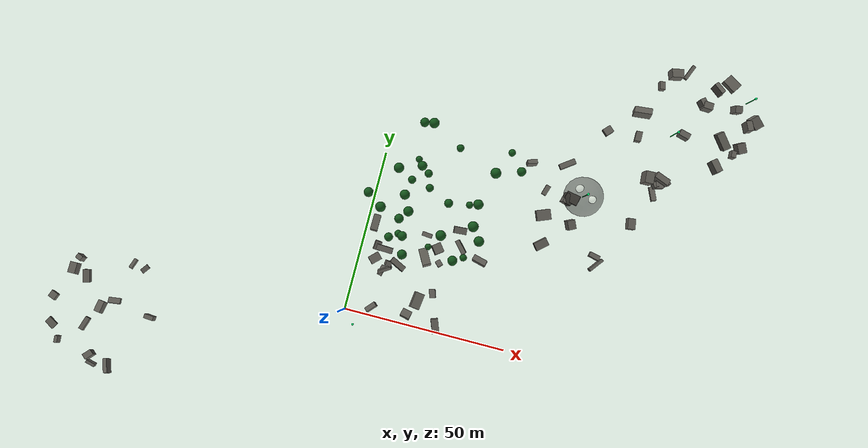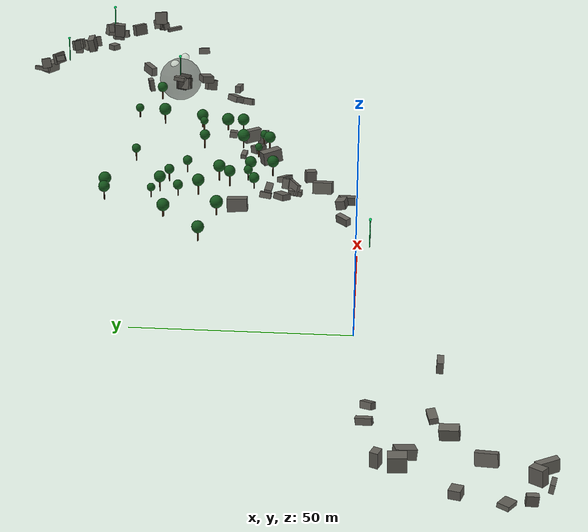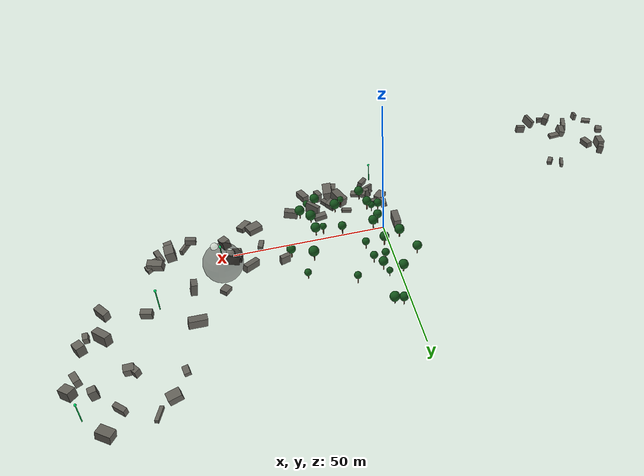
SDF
<sdf version="1.10">
 <world name="hiking_lora_world">
  <model name="node_ridge_mid">
   <static>true</static>
   <pose>4 -3 0 0 0 0</pose>
   <link name="tower">
    <visual name="mast">
     <pose>0 0 22.4037 0 0 0</pose>
     <geometry><cylinder><radius>0.12</radius><length>6</length></cylinder></geometry>
     <material><ambient>0.0 0.6624 0.2592 1</ambient><diffuse>0.0 0.92 0.36 1</diffuse></material>
    </visual>
    <visual name="antenna">
     <pose>0 0 25.7537 0 0 0</pose>
     <geometry><sphere><radius>0.31</radius></sphere></geometry>
     <material><ambient>0.0 0.72 0.34559999999999996 1</ambient><diffuse>0.0 1.0 0.48 1</diffuse></material>
    </visual>
   </link>
  </model>
  <model name="node_crater_edge">
   <static>true</static>
   <pose>54 45 0 0 0 0</pose>
   <link name="tower">
    <visual name="mast">
     <pose>0 0 46.4676 0 0 0</pose>
     <geometry><cylinder><radius>0.12</radius><length>6</length></cylinder></geometry>
     <material><ambient>0.0 0.6624 0.2592 1</ambient><diffuse>0.0 0.92 0.36 1</diffuse></material>
    </visual>
    <visual name="antenna">
     <pose>0 0 49.8176 0 0 0</pose>
     <geometry><sphere><radius>0.31</radius></sphere></geometry>
     <material><ambient>0.0 0.72 0.34559999999999996 1</ambient><diffuse>0.0 1.0 0.48 1</diffuse></material>
    </visual>
   </link>
  </model>
  <model name="node_north_saddle">
   <static>true</static>
   <pose>70 64 0 0 0 0</pose>
   <link name="tower">
    <visual name="mast">
     <pose>0 0 55.4339 0 0 0</pose>
     <geometry><cylinder><radius>0.12</radius><length>6</length></cylinder></geometry>
     <material><ambient>0.0 0.6624 0.2592 1</ambient><diffuse>0.0 0.92 0.36 1</diffuse></material>
    </visual>
    <visual name="antenna">
     <pose>0 0 58.7839 0 0 0</pose>
     <geometry><sphere><radius>0.31</radius></sphere></geometry>
     <material><ambient>0.0 0.72 0.34559999999999996 1</ambient><diffuse>0.0 1.0 0.48 1</diffuse></material>
    </visual>
   </link>
  </model>
  <model name="node_summit_view">
   <static>true</static>
   <pose>91 81 0 0 0 0</pose>
   <link name="tower">
    <visual name="mast">
     <pose>0 0 42.7321 0 0 0</pose>
     <geometry><cylinder><radius>0.12</radius><length>6</length></cylinder></geometry>
     <material><ambient>0.0 0.6624 0.2592 1</ambient><diffuse>0.0 0.92 0.36 1</diffuse></material>
    </visual>
    <visual name="antenna">
     <pose>0 0 46.0821 0 0 0</pose>
     <geometry><sphere><radius>0.31</radius></sphere></geometry>
     <material><ambient>0.0 0.72 0.34559999999999996 1</ambient><diffuse>0.0 1.0 0.48 1</diffuse></material>
    </visual>
   </link>
  </model>
  <model name="north_forest_trees">
   <static>true</static>
   <link name="trees">
    <visual name="trunk_0">
     <pose>11.5891 44.0858 29.7794 0 0 0</pose>
     <geometry><cylinder><radius>0.1541</radius><length>2.7017</length></cylinder></geometry>
     <material><ambient>0.2016 0.12240000000000001 0.0576 1</ambient><diffuse>0.28 0.17 0.08 1</diffuse></material>
    </visual>
    <visual name="canopy_0">
     <pose>11.5891 44.0858 31.8503 0 0 0</pose>
     <geometry><sphere><radius>1.3092</radius></sphere></geometry>
     <material>
      <ambient>0.0576 0.24480000000000002 0.07919999999999999 1</ambient>
      <diffuse>0.08 0.34 0.11 1</diffuse>
     </material>
    </visual>
    <visual name="trunk_1">
     <pose>20.8888 26.1444 37.3318 0 0 0</pose>
     <geometry><cylinder><radius>0.1187</radius><length>2.2871</length></cylinder></geometry>
     <material><ambient>0.2016 0.12240000000000001 0.0576 1</ambient><diffuse>0.28 0.17 0.08 1</diffuse></material>
    </visual>
    <visual name="canopy_1">
     <pose>20.8888 26.1444 39.242 0 0 0</pose>
     <geometry><sphere><radius>1.3939</radius></sphere></geometry>
     <material>
      <ambient>0.0576 0.24480000000000002 0.07919999999999999 1</ambient>
      <diffuse>0.08 0.34 0.11 1</diffuse>
     </material>
    </visual>
    <visual name="trunk_2">
     <pose>10.9891 30.6313 32.8303 0 0 0</pose>
     <geometry><cylinder><radius>0.1615</radius><length>2.6215</length></cylinder></geometry>
     <material><ambient>0.2016 0.12240000000000001 0.0576 1</ambient><diffuse>0.28 0.17 0.08 1</diffuse></material>
    </visual>
    <visual name="canopy_2">
     <pose>10.9891 30.6313 34.8855 0 0 0</pose>
     <geometry><sphere><radius>1.3536</radius></sphere></geometry>
     <material>
      <ambient>0.0576 0.24480000000000002 0.07919999999999999 1</ambient>
      <diffuse>0.08 0.34 0.11 1</diffuse>
     </material>
    </visual>
    <visual name="trunk_3">
     <pose>15.0314 38.2635 33.0691 0 0 0</pose>
     <geometry><cylinder><radius>0.142</radius><length>2.2435</length></cylinder></geometry>
     <material><ambient>0.2016 0.12240000000000001 0.0576 1</ambient><diffuse>0.28 0.17 0.08 1</diffuse></material>
    </visual>
    <visual name="canopy_3">
     <pose>15.0314 38.2635 34.7768 0 0 0</pose>
     <geometry><sphere><radius>1.0655</radius></sphere></geometry>
     <material>
      <ambient>0.0576 0.24480000000000002 0.07919999999999999 1</ambient>
      <diffuse>0.08 0.34 0.11 1</diffuse>
     </material>
    </visual>
    <visual name="trunk_4">
     <pose>36.6394 46.899 44.4152 0 0 0</pose>
     <geometry><cylinder><radius>0.1774</radius><length>2.2742</length></cylinder></geometry>
     <material><ambient>0.2016 0.12240000000000001 0.0576 1</ambient><diffuse>0.28 0.17 0.08 1</diffuse></material>
    </visual>
    <visual name="canopy_4">
     <pose>36.6394 46.899 46.2051 0 0 0</pose>
     <geometry><sphere><radius>1.187</radius></sphere></geometry>
     <material>
      <ambient>0.0576 0.24480000000000002 0.07919999999999999 1</ambient>
      <diffuse>0.08 0.34 0.11 1</diffuse>
     </material>
    </visual>
    <visual name="trunk_5">
     <pose>30.9716 27.1115 38.3306 0 0 0</pose>
     <geometry><cylinder><radius>0.1398</radius><length>2.2984</length></cylinder></geometry>
     <material><ambient>0.2016 0.12240000000000001 0.0576 1</ambient><diffuse>0.28 0.17 0.08 1</diffuse></material>
    </visual>
    <visual name="canopy_5">
     <pose>30.9716 27.1115 40.2268 0 0 0</pose>
     <geometry><sphere><radius>1.3582</radius></sphere></geometry>
     <material>
      <ambient>0.0576 0.24480000000000002 0.07919999999999999 1</ambient>
      <diffuse>0.08 0.34 0.11 1</diffuse>
     </material>
    </visual>
    <visual name="trunk_6">
     <pose>20.7825 34.9889 37.2763 0 0 0</pose>
     <geometry><cylinder><radius>0.1598</radius><length>2.5757</length></cylinder></geometry>
     <material><ambient>0.2016 0.12240000000000001 0.0576 1</ambient><diffuse>0.28 0.17 0.08 1</diffuse></material>
    </visual>
    <visual name="canopy_6">
     <pose>20.7825 34.9889 39.2058 0 0 0</pose>
     <geometry><sphere><radius>1.1666</radius></sphere></geometry>
     <material>
      <ambient>0.0576 0.24480000000000002 0.07919999999999999 1</ambient>
      <diffuse>0.08 0.34 0.11 1</diffuse>
     </material>
    </visual>
    <visual name="trunk_7">
     <pose>28.2971 36.3792 39.9759 0 0 0</pose>
     <geometry><cylinder><radius>0.1697</radius><length>2.1481</length></cylinder></geometry>
     <material><ambient>0.2016 0.12240000000000001 0.0576 1</ambient><diffuse>0.28 0.17 0.08 1</diffuse></material>
    </visual>
    <visual name="canopy_7">
     <pose>28.2971 36.3792 41.7813 0 0 0</pose>
     <geometry><sphere><radius>1.3298</radius></sphere></geometry>
     <material>
      <ambient>0.0576 0.24480000000000002 0.07919999999999999 1</ambient>
      <diffuse>0.08 0.34 0.11 1</diffuse>
     </material>
    </visual>
    <visual name="trunk_8">
     <pose>-1.1687 34.0595 22.7393 0 0 0</pose>
     <geometry><cylinder><radius>0.162</radius><length>2.445</length></cylinder></geometry>
     <material><ambient>0.2016 0.12240000000000001 0.0576 1</ambient><diffuse>0.28 0.17 0.08 1</diffuse></material>
    </visual>
    <visual name="canopy_8">
     <pose>-1.1687 34.0595 24.7162 0 0 0</pose>
     <geometry><sphere><radius>1.3715</radius></sphere></geometry>
     <material>
      <ambient>0.0576 0.24480000000000002 0.07919999999999999 1</ambient>
      <diffuse>0.08 0.34 0.11 1</diffuse>
     </material>
    </visual>
    <visual name="trunk_9">
     <pose>10.3044 45.921 28.2916 0 0 0</pose>
     <geometry><cylinder><radius>0.1134</radius><length>1.7903</length></cylinder></geometry>
     <material><ambient>0.2016 0.12240000000000001 0.0576 1</ambient><diffuse>0.28 0.17 0.08 1</diffuse></material>
    </visual>
    <visual name="canopy_9">
     <pose>10.3044 45.921 29.6949 0 0 0</pose>
     <geometry><sphere><radius>0.924</radius></sphere></geometry>
     <material>
      <ambient>0.0576 0.24480000000000002 0.07919999999999999 1</ambient>
      <diffuse>0.08 0.34 0.11 1</diffuse>
     </material>
    </visual>
    <visual name="trunk_10">
     <pose>26.156 35.7413 39.3455 0 0 0</pose>
     <geometry><cylinder><radius>0.1873</radius><length>2.3631</length></cylinder></geometry>
     <material><ambient>0.2016 0.12240000000000001 0.0576 1</ambient><diffuse>0.28 0.17 0.08 1</diffuse></material>
    </visual>
    <visual name="canopy_10">
     <pose>26.156 35.7413 41.0388 0 0 0</pose>
     <geometry><sphere><radius>0.9305</radius></sphere></geometry>
     <material>
      <ambient>0.0576 0.24480000000000002 0.07919999999999999 1</ambient>
      <diffuse>0.08 0.34 0.11 1</diffuse>
     </material>
    </visual>
    <visual name="trunk_11">
     <pose>8.9383 35.1084 30.0657 0 0 0</pose>
     <geometry><cylinder><radius>0.1882</radius><length>2.6093</length></cylinder></geometry>
     <material><ambient>0.2016 0.12240000000000001 0.0576 1</ambient><diffuse>0.28 0.17 0.08 1</diffuse></material>
    </visual>
    <visual name="canopy_11">
     <pose>8.9383 35.1084 32.1217 0 0 0</pose>
     <geometry><sphere><radius>1.3661</radius></sphere></geometry>
     <material>
      <ambient>0.0576 0.24480000000000002 0.07919999999999999 1</ambient>
      <diffuse>0.08 0.34 0.11 1</diffuse>
     </material>
    </visual>
    <visual name="trunk_12">
     <pose>20.3251 50.7633 33.9363 0 0 0</pose>
     <geometry><cylinder><radius>0.1555</radius><length>2.4269</length></cylinder></geometry>
     <material><ambient>0.2016 0.12240000000000001 0.0576 1</ambient><diffuse>0.28 0.17 0.08 1</diffuse></material>
    </visual>
    <visual name="canopy_12">
     <pose>20.3251 50.7633 35.7104 0 0 0</pose>
     <geometry><sphere><radius>1.0195</radius></sphere></geometry>
     <material>
      <ambient>0.0576 0.24480000000000002 0.07919999999999999 1</ambient>
      <diffuse>0.08 0.34 0.11 1</diffuse>
     </material>
    </visual>
    <visual name="trunk_13">
     <pose>12.2329 18.8206 33.8243 0 0 0</pose>
     <geometry><cylinder><radius>0.1328</radius><length>2.6064</length></cylinder></geometry>
     <material><ambient>0.2016 0.12240000000000001 0.0576 1</ambient><diffuse>0.28 0.17 0.08 1</diffuse></material>
    </visual>
    <visual name="canopy_13">
     <pose>12.2329 18.8206 35.8428 0 0 0</pose>
     <geometry><sphere><radius>1.3005</radius></sphere></geometry>
     <material>
      <ambient>0.0576 0.24480000000000002 0.07919999999999999 1</ambient>
      <diffuse>0.08 0.34 0.11 1</diffuse>
     </material>
    </visual>
    <visual name="trunk_14">
     <pose>18.5043 22.5207 35.852 0 0 0</pose>
     <geometry><cylinder><radius>0.1598</radius><length>1.8864</length></cylinder></geometry>
     <material><ambient>0.2016 0.12240000000000001 0.0576 1</ambient><diffuse>0.28 0.17 0.08 1</diffuse></material>
    </visual>
    <visual name="canopy_14">
     <pose>18.5043 22.5207 37.2695 0 0 0</pose>
     <geometry><sphere><radius>0.8624</radius></sphere></geometry>
     <material>
      <ambient>0.0576 0.24480000000000002 0.07919999999999999 1</ambient>
      <diffuse>0.08 0.34 0.11 1</diffuse>
     </material>
    </visual>
    <visual name="trunk_15">
     <pose>13.7675 42.2524 31.2696 0 0 0</pose>
     <geometry><cylinder><radius>0.136</radius><length>2.2391</length></cylinder></geometry>
     <material><ambient>0.2016 0.12240000000000001 0.0576 1</ambient><diffuse>0.28 0.17 0.08 1</diffuse></material>
    </visual>
    <visual name="canopy_15">
     <pose>13.7675 42.2524 32.9936 0 0 0</pose>
     <geometry><sphere><radius>1.0989</radius></sphere></geometry>
     <material>
      <ambient>0.0576 0.24480000000000002 0.07919999999999999 1</ambient>
      <diffuse>0.08 0.34 0.11 1</diffuse>
     </material>
    </visual>
    <visual name="trunk_16">
     <pose>3.2302 30.4708 27.1267 0 0 0</pose>
     <geometry><cylinder><radius>0.1824</radius><length>2.2828</length></cylinder></geometry>
     <material><ambient>0.2016 0.12240000000000001 0.0576 1</ambient><diffuse>0.28 0.17 0.08 1</diffuse></material>
    </visual>
    <visual name="canopy_16">
     <pose>3.2302 30.4708 29.0613 0 0 0</pose>
     <geometry><sphere><radius>1.4424</radius></sphere></geometry>
     <material>
      <ambient>0.0576 0.24480000000000002 0.07919999999999999 1</ambient>
      <diffuse>0.08 0.34 0.11 1</diffuse>
     </material>
    </visual>
    <visual name="trunk_17">
     <pose>11.813 56.5899 29.2599 0 0 0</pose>
     <geometry><cylinder><radius>0.1146</radius><length>2.0467</length></cylinder></geometry>
     <material><ambient>0.2016 0.12240000000000001 0.0576 1</ambient><diffuse>0.28 0.17 0.08 1</diffuse></material>
    </visual>
    <visual name="canopy_17">
     <pose>11.813 56.5899 31.06 0 0 0</pose>
     <geometry><sphere><radius>1.4122</radius></sphere></geometry>
     <material>
      <ambient>0.0576 0.24480000000000002 0.07919999999999999 1</ambient>
      <diffuse>0.08 0.34 0.11 1</diffuse>
     </material>
    </visual>
    <visual name="trunk_18">
     <pose>9.1951 56.3262 28.0234 0 0 0</pose>
     <geometry><cylinder><radius>0.1264</radius><length>2.4276</length></cylinder></geometry>
     <material><ambient>0.2016 0.12240000000000001 0.0576 1</ambient><diffuse>0.28 0.17 0.08 1</diffuse></material>
    </visual>
    <visual name="canopy_18">
     <pose>9.1951 56.3262 29.9378 0 0 0</pose>
     <geometry><sphere><radius>1.2739</radius></sphere></geometry>
     <material>
      <ambient>0.0576 0.24480000000000002 0.07919999999999999 1</ambient>
      <diffuse>0.08 0.34 0.11 1</diffuse>
     </material>
    </visual>
    <visual name="trunk_19">
     <pose>33.5551 51.9173 40.3948 0 0 0</pose>
     <geometry><cylinder><radius>0.1445</radius><length>1.7725</length></cylinder></geometry>
     <material><ambient>0.2016 0.12240000000000001 0.0576 1</ambient><diffuse>0.28 0.17 0.08 1</diffuse></material>
    </visual>
    <visual name="canopy_19">
     <pose>33.5551 51.9173 41.8065 0 0 0</pose>
     <geometry><sphere><radius>0.9552</radius></sphere></geometry>
     <material>
      <ambient>0.0576 0.24480000000000002 0.07919999999999999 1</ambient>
      <diffuse>0.08 0.34 0.11 1</diffuse>
     </material>
    </visual>
    <visual name="trunk_20">
     <pose>25.6384 20.556 35.4842 0 0 0</pose>
     <geometry><cylinder><radius>0.145</radius><length>2.7983</length></cylinder></geometry>
     <material><ambient>0.2016 0.12240000000000001 0.0576 1</ambient><diffuse>0.28 0.17 0.08 1</diffuse></material>
    </visual>
    <visual name="canopy_20">
     <pose>25.6384 20.556 37.608 0 0 0</pose>
     <geometry><sphere><radius>1.3176</radius></sphere></geometry>
     <material>
      <ambient>0.0576 0.24480000000000002 0.07919999999999999 1</ambient>
      <diffuse>0.08 0.34 0.11 1</diffuse>
     </material>
    </visual>
    <visual name="trunk_21">
     <pose>28.512 30.4617 39.2066 0 0 0</pose>
     <geometry><cylinder><radius>0.1805</radius><length>1.7566</length></cylinder></geometry>
     <material><ambient>0.2016 0.12240000000000001 0.0576 1</ambient><diffuse>0.28 0.17 0.08 1</diffuse></material>
    </visual>
    <visual name="canopy_21">
     <pose>28.512 30.4617 40.869 0 0 0</pose>
     <geometry><sphere><radius>1.4256</radius></sphere></geometry>
     <material>
      <ambient>0.0576 0.24480000000000002 0.07919999999999999 1</ambient>
      <diffuse>0.08 0.34 0.11 1</diffuse>
     </material>
    </visual>
    <visual name="trunk_22">
     <pose>9.8558 24.1159 33.0264 0 0 0</pose>
     <geometry><cylinder><radius>0.1154</radius><length>1.9242</length></cylinder></geometry>
     <material><ambient>0.2016 0.12240000000000001 0.0576 1</ambient><diffuse>0.28 0.17 0.08 1</diffuse></material>
    </visual>
    <visual name="canopy_22">
     <pose>9.8558 24.1159 34.5283 0 0 0</pose>
     <geometry><sphere><radius>0.9816</radius></sphere></geometry>
     <material>
      <ambient>0.0576 0.24480000000000002 0.07919999999999999 1</ambient>
      <diffuse>0.08 0.34 0.11 1</diffuse>
     </material>
    </visual>
    <visual name="trunk_23">
     <pose>30.651 45.4755 40.2575 0 0 0</pose>
     <geometry><cylinder><radius>0.1511</radius><length>2.6859</length></cylinder></geometry>
     <material><ambient>0.2016 0.12240000000000001 0.0576 1</ambient><diffuse>0.28 0.17 0.08 1</diffuse></material>
    </visual>
    <visual name="canopy_23">
     <pose>30.651 45.4755 42.3756 0 0 0</pose>
     <geometry><sphere><radius>1.4094</radius></sphere></geometry>
     <material>
      <ambient>0.0576 0.24480000000000002 0.07919999999999999 1</ambient>
      <diffuse>0.08 0.34 0.11 1</diffuse>
     </material>
    </visual>
    <visual name="trunk_24">
     <pose>11.0435 23.6557 33.9623 0 0 0</pose>
     <geometry><cylinder><radius>0.1888</radius><length>2.5538</length></cylinder></geometry>
     <material><ambient>0.2016 0.12240000000000001 0.0576 1</ambient><diffuse>0.28 0.17 0.08 1</diffuse></material>
    </visual>
    <visual name="canopy_24">
     <pose>11.0435 23.6557 35.9398 0 0 0</pose>
     <geometry><sphere><radius>1.2738</radius></sphere></geometry>
     <material>
      <ambient>0.0576 0.24480000000000002 0.07919999999999999 1</ambient>
      <diffuse>0.08 0.34 0.11 1</diffuse>
     </material>
    </visual>
    <visual name="trunk_25">
     <pose>28.2422 22.0596 35.8155 0 0 0</pose>
     <geometry><cylinder><radius>0.1477</radius><length>2.3494</length></cylinder></geometry>
     <material><ambient>0.2016 0.12240000000000001 0.0576 1</ambient><diffuse>0.28 0.17 0.08 1</diffuse></material>
    </visual>
    <visual name="canopy_25">
     <pose>28.2422 22.0596 37.5134 0 0 0</pose>
     <geometry><sphere><radius>0.9512</radius></sphere></geometry>
     <material>
      <ambient>0.0576 0.24480000000000002 0.07919999999999999 1</ambient>
      <diffuse>0.08 0.34 0.11 1</diffuse>
     </material>
    </visual>
    <visual name="trunk_26">
     <pose>9.8215 39.7915 29.0538 0 0 0</pose>
     <geometry><cylinder><radius>0.1241</radius><length>1.9218</length></cylinder></geometry>
     <material><ambient>0.2016 0.12240000000000001 0.0576 1</ambient><diffuse>0.28 0.17 0.08 1</diffuse></material>
    </visual>
    <visual name="canopy_26">
     <pose>9.8215 39.7915 30.618 0 0 0</pose>
     <geometry><sphere><radius>1.0968</radius></sphere></geometry>
     <material>
      <ambient>0.0576 0.24480000000000002 0.07919999999999999 1</ambient>
      <diffuse>0.08 0.34 0.11 1</diffuse>
     </material>
    </visual>
    <visual name="trunk_27">
     <pose>9.0442 28.1367 32.2958 0 0 0</pose>
     <geometry><cylinder><radius>0.1513</radius><length>2.7867</length></cylinder></geometry>
     <material><ambient>0.2016 0.12240000000000001 0.0576 1</ambient><diffuse>0.28 0.17 0.08 1</diffuse></material>
    </visual>
    <visual name="canopy_27">
     <pose>9.0442 28.1367 34.3824 0 0 0</pose>
     <geometry><sphere><radius>1.2605</radius></sphere></geometry>
     <material>
      <ambient>0.0576 0.24480000000000002 0.07919999999999999 1</ambient>
      <diffuse>0.08 0.34 0.11 1</diffuse>
     </material>
    </visual>
    <visual name="trunk_28">
     <pose>5.4025 42.5549 25.5423 0 0 0</pose>
     <geometry><cylinder><radius>0.1831</radius><length>1.9204</length></cylinder></geometry>
     <material><ambient>0.2016 0.12240000000000001 0.0576 1</ambient><diffuse>0.28 0.17 0.08 1</diffuse></material>
    </visual>
    <visual name="canopy_28">
     <pose>5.4025 42.5549 27.2877 0 0 0</pose>
     <geometry><sphere><radius>1.4277</radius></sphere></geometry>
     <material>
      <ambient>0.0576 0.24480000000000002 0.07919999999999999 1</ambient>
      <diffuse>0.08 0.34 0.11 1</diffuse>
     </material>
    </visual>
    <visual name="trunk_29">
     <pose>7.5814 22.6438 31.86 0 0 0</pose>
     <geometry><cylinder><radius>0.1234</radius><length>1.8585</length></cylinder></geometry>
     <material><ambient>0.2016 0.12240000000000001 0.0576 1</ambient><diffuse>0.28 0.17 0.08 1</diffuse></material>
    </visual>
    <visual name="canopy_29">
     <pose>7.5814 22.6438 33.4355 0 0 0</pose>
     <geometry><sphere><radius>1.1749</radius></sphere></geometry>
     <material>
      <ambient>0.0576 0.24480000000000002 0.07919999999999999 1</ambient>
      <diffuse>0.08 0.34 0.11 1</diffuse>
     </material>
    </visual>
   </link>
  </model>
  <model name="lower_cliff">
   <static>true</static>
   <link name="rocks">
    <visual name="rock_0">
     <pose>25.6139 28.8652 38.1798 0.1288 0.1108 0.0783</pose>
     <geometry><box><size>3.3685 1.7582 1.3184</size></box></geometry>
     <material><ambient>0.2808 0.2736 0.252 1</ambient><diffuse>0.39 0.38 0.35 1</diffuse></material>
    </visual>
    <visual name="rock_1">
     <pose>9.259 15.7207 31.7826 -0.1895 0.1058 -1.6823</pose>
     <geometry><box><size>1.4099 1.5421 2.2049</size></box></geometry>
     <material><ambient>0.2808 0.2736 0.252 1</ambient><diffuse>0.39 0.38 0.35 1</diffuse></material>
    </visual>
    <visual name="rock_2">
     <pose>18.4019 19.6817 35.2711 0.051 -0.1677 -1.0749</pose>
     <geometry><box><size>4.4924 2.2774 2.9001</size></box></geometry>
     <material><ambient>0.2808 0.2736 0.252 1</ambient><diffuse>0.39 0.38 0.35 1</diffuse></material>
    </visual>
    <visual name="rock_3">
     <pose>11.8752 16.0942 32.0683 0.1397 -0.135 2.6889</pose>
     <geometry><box><size>4.3511 1.5369 1.1716</size></box></geometry>
     <material><ambient>0.2808 0.2736 0.252 1</ambient><diffuse>0.39 0.38 0.35 1</diffuse></material>
    </visual>
    <visual name="rock_4">
     <pose>5.2024 19.8819 30.315 -0.2037 0.1317 -1.6659</pose>
     <geometry><box><size>2.4631 1.7694 1.2486</size></box></geometry>
     <material><ambient>0.2808 0.2736 0.252 1</ambient><diffuse>0.39 0.38 0.35 1</diffuse></material>
    </visual>
    <visual name="rock_5">
     <pose>19.5535 7.9278 27.7915 0.1156 0.0291 1.4436</pose>
     <geometry><box><size>4.4032 2.5879 2.6115</size></box></geometry>
     <material><ambient>0.2808 0.2736 0.252 1</ambient><diffuse>0.39 0.38 0.35 1</diffuse></material>
    </visual>
    <visual name="rock_6">
     <pose>26.9224 24.644 37.6019 0.1705 -0.0325 -0.8468</pose>
     <geometry><box><size>3.9638 1.2022 3.0156</size></box></geometry>
     <material><ambient>0.2808 0.2736 0.252 1</ambient><diffuse>0.39 0.38 0.35 1</diffuse></material>
    </visual>
    <visual name="rock_7">
     <pose>7.3389 19.3664 31.2046 -0.179 0.0785 3.0965</pose>
     <geometry><box><size>4.484 1.5732 0.8644</size></box></geometry>
     <material><ambient>0.2808 0.2736 0.252 1</ambient><diffuse>0.39 0.38 0.35 1</diffuse></material>
    </visual>
    <visual name="rock_8">
     <pose>5.3842 16.3163 30.1232 0.0479 0.0203 0.7705</pose>
     <geometry><box><size>3.1063 2.2964 1.3329</size></box></geometry>
     <material><ambient>0.2808 0.2736 0.252 1</ambient><diffuse>0.39 0.38 0.35 1</diffuse></material>
    </visual>
    <visual name="rock_9">
     <pose>21.1322 22.7305 36.0601 0.0428 -0.0696 -2.4927</pose>
     <geometry><box><size>2.4794 2.6541 1.6319</size></box></geometry>
     <material><ambient>0.2808 0.2736 0.252 1</ambient><diffuse>0.39 0.38 0.35 1</diffuse></material>
    </visual>
    <visual name="rock_10">
     <pose>32.8753 22.5087 35.3253 0.0774 0.1435 2.8795</pose>
     <geometry><box><size>3.8088 1.5498 2.44</size></box></geometry>
     <material><ambient>0.2808 0.2736 0.252 1</ambient><diffuse>0.39 0.38 0.35 1</diffuse></material>
    </visual>
    <visual name="rock_11">
     <pose>3.0677 25.874 28.7243 -0.004 -0.0448 -1.5883</pose>
     <geometry><box><size>4.3804 1.981 2.9196</size></box></geometry>
     <material><ambient>0.2808 0.2736 0.252 1</ambient><diffuse>0.39 0.38 0.35 1</diffuse></material>
    </visual>
    <visual name="rock_12">
     <pose>23.1643 10.9095 29.3161 -0.0074 0.1213 -2.8138</pose>
     <geometry><box><size>1.6149 2.4106 2.6574</size></box></geometry>
     <material><ambient>0.2808 0.2736 0.252 1</ambient><diffuse>0.39 0.38 0.35 1</diffuse></material>
    </visual>
    <visual name="rock_13">
     <pose>17.5145 25.679 35.7428 -0.0712 0.1437 3.0376</pose>
     <geometry><box><size>2.7006 1.1413 0.9667</size></box></geometry>
     <material><ambient>0.2808 0.2736 0.252 1</ambient><diffuse>0.39 0.38 0.35 1</diffuse></material>
    </visual>
    <visual name="rock_14">
     <pose>17.675 3.5468 24.7327 0.1006 -0.1698 -1.809</pose>
     <geometry><box><size>2.1819 2.7178 2.0615</size></box></geometry>
     <material><ambient>0.2808 0.2736 0.252 1</ambient><diffuse>0.39 0.38 0.35 1</diffuse></material>
    </visual>
    <visual name="rock_15">
     <pose>26.4525 2.3543 22.602 0.0357 0.1258 -1.2065</pose>
     <geometry><box><size>4.1325 2.0027 1.8226</size></box></geometry>
     <material><ambient>0.2808 0.2736 0.252 1</ambient><diffuse>0.39 0.38 0.35 1</diffuse></material>
    </visual>
    <visual name="rock_16">
     <pose>8.7631 13.9758 31.1006 0.1997 -0.1715 0.5886</pose>
     <geometry><box><size>3.7816 0.8205 2.4447</size></box></geometry>
     <material><ambient>0.2808 0.2736 0.252 1</ambient><diffuse>0.39 0.38 0.35 1</diffuse></material>
    </visual>
    <visual name="rock_17">
     <pose>7.7248 2.9476 24.2341 0.2018 0.146 -2.3026</pose>
     <geometry><box><size>3.2115 1.3144 1.7735</size></box></geometry>
     <material><ambient>0.2808 0.2736 0.252 1</ambient><diffuse>0.39 0.38 0.35 1</diffuse></material>
    </visual>
    <visual name="rock_18">
     <pose>22.5661 19.0963 34.103 0.1616 0.0559 -2.3466</pose>
     <geometry><box><size>1.4785 1.6937 1.138</size></box></geometry>
     <material><ambient>0.2808 0.2736 0.252 1</ambient><diffuse>0.39 0.38 0.35 1</diffuse></material>
    </visual>
    <visual name="rock_19">
     <pose>8.0507 13.5347 30.1358 -0.1391 -0.044 1.3193</pose>
     <geometry><box><size>2.931 1.2392 1.1986</size></box></geometry>
     <material><ambient>0.2808 0.2736 0.252 1</ambient><diffuse>0.39 0.38 0.35 1</diffuse></material>
    </visual>
   </link>
  </model>
  <model name="crater_rocks">
   <static>true</static>
   <link name="rocks">
    <visual name="rock_0">
     <pose>51.3214 43.8038 44.0137 0.1279 -0.1772 -0.227</pose>
     <geometry><box><size>3.6037 2.5477 2.6582</size></box></geometry>
     <material><ambient>0.2808 0.2736 0.252 1</ambient><diffuse>0.39 0.38 0.35 1</diffuse></material>
    </visual>
    <visual name="rock_1">
     <pose>69.4971 51.111 54.3107 0.0866 -0.0671 -2.8783</pose>
     <geometry><box><size>1.9434 2.223 1.407</size></box></geometry>
     <material><ambient>0.2808 0.2736 0.252 1</ambient><diffuse>0.39 0.38 0.35 1</diffuse></material>
    </visual>
    <visual name="rock_2">
     <pose>47.3307 51.4367 47.9384 0.0217 0.1614 -2.5223</pose>
     <geometry><box><size>4.1923 1.3901 2.0075</size></box></geometry>
     <material><ambient>0.2808 0.2736 0.252 1</ambient><diffuse>0.39 0.38 0.35 1</diffuse></material>
    </visual>
    <visual name="rock_3">
     <pose>44.6749 37.3808 46.6154 0.0878 0.0093 0.3812</pose>
     <geometry><box><size>3.6772 2.7342 1.5444</size></box></geometry>
     <material><ambient>0.2808 0.2736 0.252 1</ambient><diffuse>0.39 0.38 0.35 1</diffuse></material>
    </visual>
    <visual name="rock_4">
     <pose>69.9618 51.3326 54.0395 0.217 -0.1413 -2.6634</pose>
     <geometry><box><size>4.4282 1.5105 1.5634</size></box></geometry>
     <material><ambient>0.2808 0.2736 0.252 1</ambient><diffuse>0.39 0.38 0.35 1</diffuse></material>
    </visual>
    <visual name="rock_5">
     <pose>69.5493 52.2222 54.911 -0.2113 0.0521 -0.3604</pose>
     <geometry><box><size>3.7557 1.6961 2.2913</size></box></geometry>
     <material><ambient>0.2808 0.2736 0.252 1</ambient><diffuse>0.39 0.38 0.35 1</diffuse></material>
    </visual>
    <visual name="rock_6">
     <pose>43.8349 43.7726 46.5656 -0.0291 -0.0911 1.2829</pose>
     <geometry><box><size>2.6447 1.251 0.9172</size></box></geometry>
     <material><ambient>0.2808 0.2736 0.252 1</ambient><diffuse>0.39 0.38 0.35 1</diffuse></material>
    </visual>
    <visual name="rock_7">
     <pose>61.2838 31.0353 40.1994 -0.0058 0.0475 2.9099</pose>
     <geometry><box><size>2.8136 1.2729 1.725</size></box></geometry>
     <material><ambient>0.2808 0.2736 0.252 1</ambient><diffuse>0.39 0.38 0.35 1</diffuse></material>
    </visual>
    <visual name="rock_8">
     <pose>65.7146 51.3736 57.0585 0.123 0.0457 1.6244</pose>
     <geometry><box><size>2.9248 2.2343 2.9372</size></box></geometry>
     <material><ambient>0.2808 0.2736 0.252 1</ambient><diffuse>0.39 0.38 0.35 1</diffuse></material>
    </visual>
    <visual name="rock_9">
     <pose>46.783 30.4822 41.2738 0.1833 -0.0411 0.7207</pose>
     <geometry><box><size>3.567 2.166 1.3887</size></box></geometry>
     <material><ambient>0.2808 0.2736 0.252 1</ambient><diffuse>0.39 0.38 0.35 1</diffuse></material>
    </visual>
    <visual name="rock_10">
     <pose>63.0058 29.2473 36.5064 -0.0828 -0.0392 -2.2279</pose>
     <geometry><box><size>4.4665 0.8128 1.5503</size></box></geometry>
     <material><ambient>0.2808 0.2736 0.252 1</ambient><diffuse>0.39 0.38 0.35 1</diffuse></material>
    </visual>
    <visual name="rock_11">
     <pose>50.2056 43.3334 43.9161 -0.0166 -0.141 2.8651</pose>
     <geometry><box><size>2.3381 2.687 2.5817</size></box></geometry>
     <material><ambient>0.2808 0.2736 0.252 1</ambient><diffuse>0.39 0.38 0.35 1</diffuse></material>
    </visual>
    <visual name="rock_12">
     <pose>52.6701 37.1733 43.1291 -0.1052 0.1624 -1.1177</pose>
     <geometry><box><size>2.4394 2.0832 2.4359</size></box></geometry>
     <material><ambient>0.2808 0.2736 0.252 1</ambient><diffuse>0.39 0.38 0.35 1</diffuse></material>
    </visual>
    <visual name="rock_13">
     <pose>54.5593 61.5441 51.7954 0.0431 -0.0801 -0.7603</pose>
     <geometry><box><size>1.8756 2.1623 1.2797</size></box></geometry>
     <material><ambient>0.2808 0.2736 0.252 1</ambient><diffuse>0.39 0.38 0.35 1</diffuse></material>
    </visual>
    <visual name="rock_14">
     <pose>66.4572 40.5246 48.5901 -0.1433 -0.0415 -1.43</pose>
     <geometry><box><size>2.7543 2.0342 1.4735</size></box></geometry>
     <material><ambient>0.2808 0.2736 0.252 1</ambient><diffuse>0.39 0.38 0.35 1</diffuse></material>
    </visual>
    <visual name="rock_15">
     <pose>61.6538 61.3408 54.5762 0.09 -0.1732 0.0076</pose>
     <geometry><box><size>1.5066 2.4209 3.0434</size></box></geometry>
     <material><ambient>0.2808 0.2736 0.252 1</ambient><diffuse>0.39 0.38 0.35 1</diffuse></material>
    </visual>
    <visual name="rock_16">
     <pose>68.6088 48.4276 53.7244 0.0195 -0.146 -1.2003</pose>
     <geometry><box><size>3.5713 1.2805 0.8182</size></box></geometry>
     <material><ambient>0.2808 0.2736 0.252 1</ambient><diffuse>0.39 0.38 0.35 1</diffuse></material>
    </visual>
    <visual name="rock_17">
     <pose>38.6793 49.8413 46.2173 0.1418 0.0106 -2.8327</pose>
     <geometry><box><size>2.5471 1.0699 2.7001</size></box></geometry>
     <material><ambient>0.2808 0.2736 0.252 1</ambient><diffuse>0.39 0.38 0.35 1</diffuse></material>
    </visual>
   </link>
  </model>
  <model name="summit_boulders">
   <static>true</static>
   <link name="rocks">
    <visual name="rock_0">
     <pose>82.1251 81.972 42.4354 0.1511 0.1531 2.41</pose>
     <geometry><box><size>3.1109 1.2502 2.7257</size></box></geometry>
     <material><ambient>0.2808 0.2736 0.252 1</ambient><diffuse>0.39 0.38 0.35 1</diffuse></material>
    </visual>
    <visual name="rock_1">
     <pose>90.8906 73.4318 45.2355 0.1141 -0.1122 -2.7668</pose>
     <geometry><box><size>1.6494 2.5994 2.5926</size></box></geometry>
     <material><ambient>0.2808 0.2736 0.252 1</ambient><diffuse>0.39 0.38 0.35 1</diffuse></material>
    </visual>
    <visual name="rock_2">
     <pose>83.2735 59.8561 50.3815 -0.0713 -0.0829 -0.9228</pose>
     <geometry><box><size>3.3229 1.7422 2.7203</size></box></geometry>
     <material><ambient>0.2808 0.2736 0.252 1</ambient><diffuse>0.39 0.38 0.35 1</diffuse></material>
    </visual>
    <visual name="rock_3">
     <pose>74.0021 84.855 41.3568 0.0052 0.0641 -1.9492</pose>
     <geometry><box><size>4.1595 0.942 0.9623</size></box></geometry>
     <material><ambient>0.2808 0.2736 0.252 1</ambient><diffuse>0.39 0.38 0.35 1</diffuse></material>
    </visual>
    <visual name="rock_4">
     <pose>77.4871 76.0889 47.0117 0.0674 -0.1231 -2.4875</pose>
     <geometry><box><size>1.5152 1.7901 2.4338</size></box></geometry>
     <material><ambient>0.2808 0.2736 0.252 1</ambient><diffuse>0.39 0.38 0.35 1</diffuse></material>
    </visual>
    <visual name="rock_5">
     <pose>89.3171 66.7495 47.6794 0.0108 -0.1518 2.0563</pose>
     <geometry><box><size>2.6661 2.1817 2.5468</size></box></geometry>
     <material><ambient>0.2808 0.2736 0.252 1</ambient><diffuse>0.39 0.38 0.35 1</diffuse></material>
    </visual>
    <visual name="rock_6">
     <pose>78.773 75.3317 47.1945 -0.1434 0.0755 -0.0389</pose>
     <geometry><box><size>2.492 1.8651 2.3077</size></box></geometry>
     <material><ambient>0.2808 0.2736 0.252 1</ambient><diffuse>0.39 0.38 0.35 1</diffuse></material>
    </visual>
    <visual name="rock_7">
     <pose>86.2349 85.3459 39.1471 -0.1244 0.1 2.5306</pose>
     <geometry><box><size>3.9009 2.6127 2.4307</size></box></geometry>
     <material><ambient>0.2808 0.2736 0.252 1</ambient><diffuse>0.39 0.38 0.35 1</diffuse></material>
    </visual>
    <visual name="rock_8">
     <pose>62.1491 68.6389 50.8428 0.1922 0.1058 -3.0709</pose>
     <geometry><box><size>4.4075 1.5803 3.0604</size></box></geometry>
     <material><ambient>0.2808 0.2736 0.252 1</ambient><diffuse>0.39 0.38 0.35 1</diffuse></material>
    </visual>
    <visual name="rock_9">
     <pose>70.0435 82.6781 43.7345 -0.149 0.1551 0.2276</pose>
     <geometry><box><size>3.2823 2.3114 2.3525</size></box></geometry>
     <material><ambient>0.2808 0.2736 0.252 1</ambient><diffuse>0.39 0.38 0.35 1</diffuse></material>
    </visual>
    <visual name="rock_10">
     <pose>83.6918 66.7677 50.0743 0.1056 0.1378 -0.8648</pose>
     <geometry><box><size>4.494 1.9097 2.6614</size></box></geometry>
     <material><ambient>0.2808 0.2736 0.252 1</ambient><diffuse>0.39 0.38 0.35 1</diffuse></material>
    </visual>
    <visual name="rock_11">
     <pose>87.3934 77.3828 44.1614 -0.0606 -0.1328 -2.972</pose>
     <geometry><box><size>1.9526 1.8797 2.7559</size></box></geometry>
     <material><ambient>0.2808 0.2736 0.252 1</ambient><diffuse>0.39 0.38 0.35 1</diffuse></material>
    </visual>
    <visual name="rock_12">
     <pose>66.5367 78.028 45.9185 -0.1729 0.154 0.1447</pose>
     <geometry><box><size>1.4815 2.1309 1.3061</size></box></geometry>
     <material><ambient>0.2808 0.2736 0.252 1</ambient><diffuse>0.39 0.38 0.35 1</diffuse></material>
    </visual>
    <visual name="rock_13">
     <pose>87.6333 64.5349 48.2303 0.062 0.0975 1.5795</pose>
     <geometry><box><size>1.7808 1.2801 1.8182</size></box></geometry>
     <material><ambient>0.2808 0.2736 0.252 1</ambient><diffuse>0.39 0.38 0.35 1</diffuse></material>
    </visual>
    <visual name="rock_14">
     <pose>73.0083 65.0584 52.9165 -0.1032 0.0136 -0.259</pose>
     <geometry><box><size>2.7334 1.5561 1.975</size></box></geometry>
     <material><ambient>0.2808 0.2736 0.252 1</ambient><diffuse>0.39 0.38 0.35 1</diffuse></material>
    </visual>
    <visual name="rock_15">
     <pose>93.0382 75.4162 43.6859 0.1016 0.1776 -0.7736</pose>
     <geometry><box><size>3.218 2.4055 2.5677</size></box></geometry>
     <material><ambient>0.2808 0.2736 0.252 1</ambient><diffuse>0.39 0.38 0.35 1</diffuse></material>
    </visual>
   </link>
  </model>
  <model name="western_scree">
   <static>true</static>
   <link name="rocks">
    <visual name="rock_0">
     <pose>-68.9125 -17.2793 13.2418 0.219 -0.1091 -1.7136</pose>
     <geometry><box><size>3.4595 1.963 2.1834</size></box></geometry>
     <material><ambient>0.2808 0.2736 0.252 1</ambient><diffuse>0.39 0.38 0.35 1</diffuse></material>
    </visual>
    <visual name="rock_1">
     <pose>-69.7034 -35.0401 4.4529 0.1436 -0.0001 -0.2419</pose>
     <geometry><box><size>2.8968 0.9099 1.689</size></box></geometry>
     <material><ambient>0.2808 0.2736 0.252 1</ambient><diffuse>0.39 0.38 0.35 1</diffuse></material>
    </visual>
    <visual name="rock_2">
     <pose>-79.5727 -8.3589 12.9567 0.1106 -0.045 -1.5683</pose>
     <geometry><box><size>3.2553 2.1861 2.8767</size></box></geometry>
     <material><ambient>0.2808 0.2736 0.252 1</ambient><diffuse>0.39 0.38 0.35 1</diffuse></material>
    </visual>
    <visual name="rock_3">
     <pose>-64.6325 -34.5802 5.2376 0.1719 -0.1522 -1.2065</pose>
     <geometry><box><size>4.2773 1.1976 2.8345</size></box></geometry>
     <material><ambient>0.2808 0.2736 0.252 1</ambient><diffuse>0.39 0.38 0.35 1</diffuse></material>
    </visual>
    <visual name="rock_4">
     <pose>-72.849 -23.4084 10.6298 -0.0898 -0.1014 -1.8412</pose>
     <geometry><box><size>3.9766 1.3297 2.4376</size></box></geometry>
     <material><ambient>0.2808 0.2736 0.252 1</ambient><diffuse>0.39 0.38 0.35 1</diffuse></material>
    </visual>
    <visual name="rock_5">
     <pose>-84.0422 -17.7547 10.4913 0.0657 -0.0475 -1.9273</pose>
     <geometry><box><size>2.0754 2.1728 1.6042</size></box></geometry>
     <material><ambient>0.2808 0.2736 0.252 1</ambient><diffuse>0.39 0.38 0.35 1</diffuse></material>
    </visual>
    <visual name="rock_6">
     <pose>-65.1125 -14.4631 14.1784 0.1674 0.0557 -3.0087</pose>
     <geometry><box><size>3.5587 1.6273 1.0958</size></box></geometry>
     <material><ambient>0.2808 0.2736 0.252 1</ambient><diffuse>0.39 0.38 0.35 1</diffuse></material>
    </visual>
    <visual name="rock_7">
     <pose>-70.3152 -32.4675 6.612 -0.0555 0.049 0.8528</pose>
     <geometry><box><size>2.7756 1.8013 3.1093</size></box></geometry>
     <material><ambient>0.2808 0.2736 0.252 1</ambient><diffuse>0.39 0.38 0.35 1</diffuse></material>
    </visual>
    <visual name="rock_8">
     <pose>-75.4333 -9.6461 12.5746 0.0061 -0.0995 1.8184</pose>
     <geometry><box><size>3.7404 2.0715 1.8966</size></box></geometry>
     <material><ambient>0.2808 0.2736 0.252 1</ambient><diffuse>0.39 0.38 0.35 1</diffuse></material>
    </visual>
    <visual name="rock_9">
     <pose>-52.8809 -16.1019 18.3492 0.0365 -0.1488 -0.0621</pose>
     <geometry><box><size>2.8103 1.2428 2.2083</size></box></geometry>
     <material><ambient>0.2808 0.2736 0.252 1</ambient><diffuse>0.39 0.38 0.35 1</diffuse></material>
    </visual>
    <visual name="rock_10">
     <pose>-59.3609 -3.3767 12.9731 -0.1988 -0.1128 -2.1886</pose>
     <geometry><box><size>2.4135 1.4567 1.3169</size></box></geometry>
     <material><ambient>0.2808 0.2736 0.252 1</ambient><diffuse>0.39 0.38 0.35 1</diffuse></material>
    </visual>
    <visual name="rock_11">
     <pose>-80.4309 -30.303 7.6915 -0.1691 -0.0341 1.6391</pose>
     <geometry><box><size>2.0851 1.0235 2.0827</size></box></geometry>
     <material><ambient>0.2808 0.2736 0.252 1</ambient><diffuse>0.39 0.38 0.35 1</diffuse></material>
    </visual>
    <visual name="rock_12">
     <pose>-63.3897 -2.7909 11.9036 0.0437 -0.1453 -1.8619</pose>
     <geometry><box><size>3.07 0.97 1.3821</size></box></geometry>
     <material><ambient>0.2808 0.2736 0.252 1</ambient><diffuse>0.39 0.38 0.35 1</diffuse></material>
    </visual>
    <visual name="rock_13">
     <pose>-83.2264 -25.968 8.3262 -0.0869 -0.0655 2.5976</pose>
     <geometry><box><size>3.0133 2.127 0.8218</size></box></geometry>
     <material><ambient>0.2808 0.2736 0.252 1</ambient><diffuse>0.39 0.38 0.35 1</diffuse></material>
    </visual>
    <visual name="rock_14">
     <pose>-78.5254 -4.8649 12.9677 0.1194 0.0287 -1.9972</pose>
     <geometry><box><size>1.5064 1.7968 2.9395</size></box></geometry>
     <material><ambient>0.2808 0.2736 0.252 1</ambient><diffuse>0.39 0.38 0.35 1</diffuse></material>
    </visual>
   </link>
  </model>
  <model name="crater_smoke_marker">
   <static>true</static>
   <pose>54 45 0 0 0 0</pose>
   <link name="crater_marker">
    <visual name="bowl_shadow">
     <pose>0 0 44.0676 0 0 0</pose>
     <geometry><sphere><radius>5.2</radius></sphere></geometry>
     <material>
      <ambient>0.07919999999999999 0.072 0.0648 0.45</ambient>
      <diffuse>0.11 0.10 0.09 0.45</diffuse>
     </material>
    </visual>
    <visual name="steam_0">
     <pose>-2.0 1.0 48.0676 0 0 0</pose>
     <geometry><sphere><radius>1.2</radius></sphere></geometry>
     <material><ambient>0.5184 0.5184 0.4824 0.35</ambient><diffuse>0.72 0.72 0.67 0.35</diffuse></material>
    </visual>
    <visual name="steam_1">
     <pose>1.4 -1.0 49.2676 0 0 0</pose>
     <geometry><sphere><radius>1</radius></sphere></geometry>
     <material>
      <ambient>0.5903999999999999 0.5903999999999999 0.5472 0.3</ambient>
      <diffuse>0.82 0.82 0.76 0.3</diffuse>
     </material>
    </visual>
   </link>
  </model>
 </world>
</sdf>
